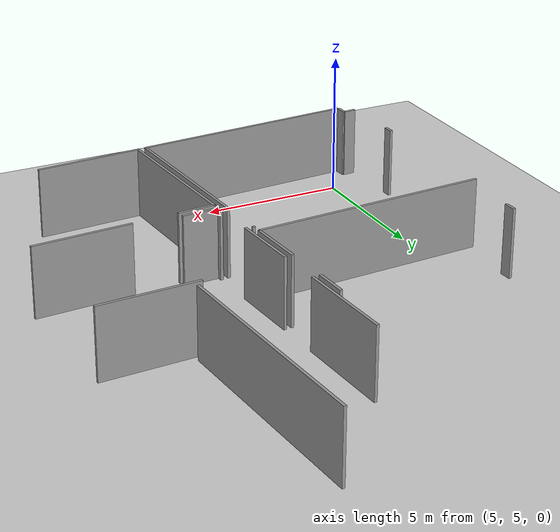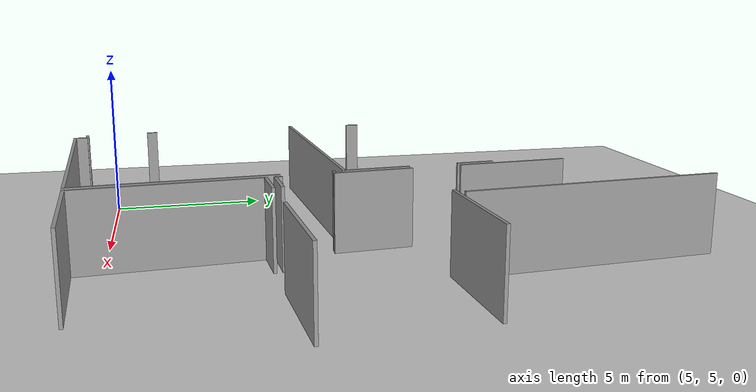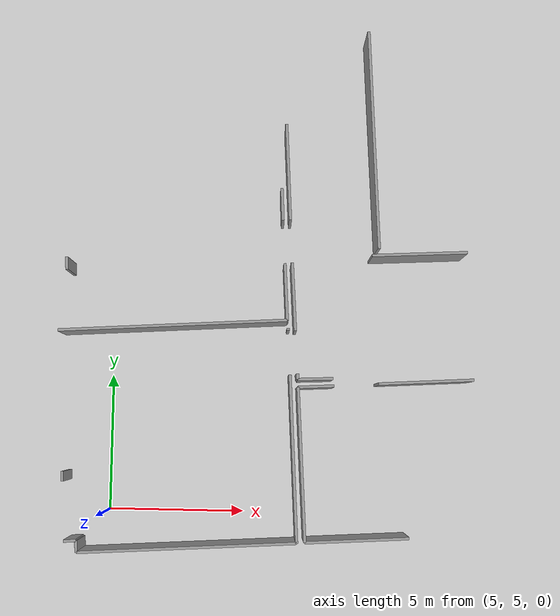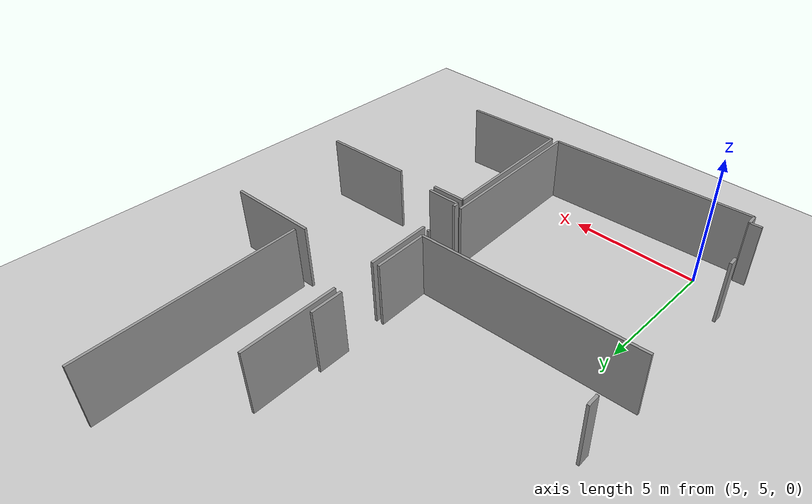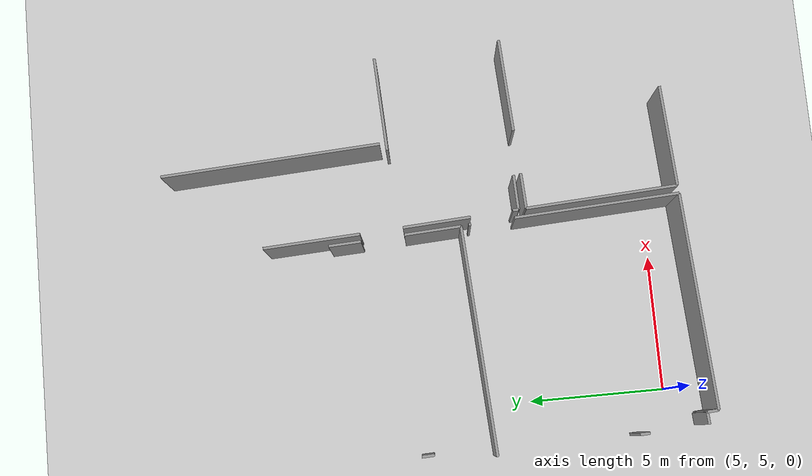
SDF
<sdf version="1.6">
 <world name="default">
  <model name="ground_plane">
   <static>1</static>
   <link name="link">
    <collision name="collision">
     <geometry><plane><normal>0 0 1</normal><size>100 100</size></plane></geometry>
     <surface><friction><ode><mu>100</mu><mu2>50</mu2></ode></friction></surface>
    </collision>
    <visual name="visual">
     <cast_shadows>0</cast_shadows>
     <geometry><plane><normal>0 0 1</normal><size>100 100</size></plane></geometry>
     <material>
      <script><uri>file://media/materials/scripts/gazebo.material</uri><name>Gazebo/Grey</name></script>
     </material>
    </visual>
   </link>
  </model>
  <model name="50025633">
   <static>1</static>
   <link name="Wall_53">
    <collision name="Wall_53_Collision">
     <geometry><box><size>1.28263585378 0.1 2.5</size></box></geometry>
     <pose>0.641317926891 0 1.25 0 0 0</pose>
    </collision>
    <visual name="Wall_53_Visual">
     <pose>0.641317926891 0 1.25 0 0 0</pose>
     <geometry><box><size>1.28263585378 0.1 2.5</size></box></geometry>
     <material>
      <script><uri>file://media/materials/scripts/gazebo.material</uri><name>Gazebo/Grey</name></script>
      <ambient>1 1 1 1</ambient>
     </material>
    </visual>
    <pose>63.5970044019 -37.6960954323 0 0 0 -3.09859349736</pose>
   </link>
   <link name="Wall_54">
    <collision name="Wall_54_Collision">
     <geometry><box><size>0.210160549495 0.1 2.5</size></box></geometry>
     <pose>0.105080274747 0 1.25 0 0 0</pose>
    </collision>
    <visual name="Wall_54_Visual">
     <pose>0.105080274747 0 1.25 0 0 0</pose>
     <geometry><box><size>0.210160549495 0.1 2.5</size></box></geometry>
     <material>
      <script><uri>file://media/materials/scripts/gazebo.material</uri><name>Gazebo/Grey</name></script>
      <ambient>1 1 1 1</ambient>
     </material>
    </visual>
    <pose>62.3155541158 -37.7512306979 0 0 0 1.62341115965</pose>
   </link>
   <link name="Wall_55">
    <collision name="Wall_55_Collision">
     <geometry><box><size>2.48927145445 0.1 2.5</size></box></geometry>
     <pose>1.24463572722 0 1.25 0 0 0</pose>
    </collision>
    <visual name="Wall_55_Visual">
     <pose>1.24463572722 0 1.25 0 0 0</pose>
     <geometry><box><size>2.48927145445 0.1 2.5</size></box></geometry>
     <material>
      <script><uri>file://media/materials/scripts/gazebo.material</uri><name>Gazebo/Grey</name></script>
      <ambient>1 1 1 1</ambient>
     </material>
    </visual>
    <pose>62.1971530385 -35.9861399597 0 0 0 1.63504245026</pose>
   </link>
   <link name="Wall_56">
    <collision name="Wall_56_Collision">
     <geometry><box><size>3.55040020973 0.1 2.5</size></box></geometry>
     <pose>1.77520010486 0 1.25 0 0 0</pose>
    </collision>
    <visual name="Wall_56_Visual">
     <pose>1.77520010486 0 1.25 0 0 0</pose>
     <geometry><box><size>3.55040020973 0.1 2.5</size></box></geometry>
     <material>
      <script><uri>file://media/materials/scripts/gazebo.material</uri><name>Gazebo/Grey</name></script>
      <ambient>1 1 1 1</ambient>
     </material>
    </visual>
    <pose>61.9400245187 -31.9300137838 0 0 0 1.62764847852</pose>
   </link>
   <link name="Wall_90">
    <collision name="Wall_90_Collision">
     <geometry><box><size>3.48423079399 0.1 2.5</size></box></geometry>
     <pose>1.742115397 0 1.25 0 0 0</pose>
    </collision>
    <visual name="Wall_90_Visual">
     <pose>1.742115397 0 1.25 0 0 0</pose>
     <geometry><box><size>3.48423079399 0.1 2.5</size></box></geometry>
     <material>
      <script><uri>file://media/materials/scripts/gazebo.material</uri><name>Gazebo/Grey</name></script>
      <ambient>1 1 1 1</ambient>
     </material>
    </visual>
    <pose>64.9558219156 -33.1777985276 0 0 0 0.050739516116</pose>
   </link>
   <link name="Wall_110">
    <collision name="Wall_110_Collision">
     <geometry><box><size>8.35656127922 0.1 2.5</size></box></geometry>
     <pose>4.17828063961 0 1.25 0 0 0</pose>
    </collision>
    <visual name="Wall_110_Visual">
     <pose>4.17828063961 0 1.25 0 0 0</pose>
     <geometry><box><size>8.35656127922 0.1 2.5</size></box></geometry>
     <material>
      <script><uri>file://media/materials/scripts/gazebo.material</uri><name>Gazebo/Grey</name></script>
      <ambient>1 1 1 1</ambient>
     </material>
    </visual>
    <pose>61.8958146744 -35.6081966068 0 0 0 -3.0794204015</pose>
   </link>
   <link name="Wall_112">
    <collision name="Wall_112_Collision">
     <geometry><box><size>0.45519616298 0.1 2.5</size></box></geometry>
     <pose>0.22759808149 0 1.25 0 0 0</pose>
    </collision>
    <visual name="Wall_112_Visual">
     <pose>0.22759808149 0 1.25 0 0 0</pose>
     <geometry><box><size>0.45519616298 0.1 2.5</size></box></geometry>
     <material>
      <script><uri>file://media/materials/scripts/gazebo.material</uri><name>Gazebo/Grey</name></script>
      <ambient>1 1 1 1</ambient>
     </material>
    </visual>
    <pose>53.8184982627 -33.9068798394 0 0 0 1.61239243155</pose>
   </link>
   <link name="Wall_115">
    <collision name="Wall_115_Collision">
     <geometry><box><size>1.19084087528 0.1 2.5</size></box></geometry>
     <pose>0.595420437639 0 1.25 0 0 0</pose>
    </collision>
    <visual name="Wall_115_Visual">
     <pose>0.595420437639 0 1.25 0 0 0</pose>
     <geometry><box><size>1.19084087528 0.1 2.5</size></box></geometry>
     <material>
      <script><uri>file://media/materials/scripts/gazebo.material</uri><name>Gazebo/Grey</name></script>
      <ambient>1 1 1 1</ambient>
     </material>
    </visual>
    <pose>61.6087047659 -30.7595962676 0 0 0 -1.51860575625</pose>
   </link>
   <link name="Wall_116">
    <collision name="Wall_116_Collision">
     <geometry><box><size>2.07754639512 0.1 2.5</size></box></geometry>
     <pose>1.03877319756 0 1.25 0 0 0</pose>
    </collision>
    <visual name="Wall_116_Visual">
     <pose>1.03877319756 0 1.25 0 0 0</pose>
     <geometry><box><size>2.07754639512 0.1 2.5</size></box></geometry>
     <material>
      <script><uri>file://media/materials/scripts/gazebo.material</uri><name>Gazebo/Grey</name></script>
      <ambient>1 1 1 1</ambient>
     </material>
    </visual>
    <pose>61.7710616079 -33.5343991971 0 0 0 -1.51071191137</pose>
   </link>
   <link name="Wall_117">
    <collision name="Wall_117_Collision">
     <geometry><box><size>7.92990178103 0.1 2.5</size></box></geometry>
     <pose>3.96495089051 0 1.25 0 0 0</pose>
    </collision>
    <visual name="Wall_117_Visual">
     <pose>3.96495089051 0 1.25 0 0 0</pose>
     <geometry><box><size>7.92990178103 0.1 2.5</size></box></geometry>
     <material>
      <script><uri>file://media/materials/scripts/gazebo.material</uri><name>Gazebo/Grey</name></script>
      <ambient>1 1 1 1</ambient>
     </material>
    </visual>
    <pose>62.3818688822 -43.6397786967 0 0 0 -3.08098261708</pose>
   </link>
   <link name="Wall_118">
    <collision name="Wall_118_Collision">
     <geometry><box><size>0.42364401826 0.1 2.5</size></box></geometry>
     <pose>0.21182200913 0 1.25 0 0 0</pose>
    </collision>
    <visual name="Wall_118_Visual">
     <pose>0.21182200913 0 1.25 0 0 0</pose>
     <geometry><box><size>0.42364401826 0.1 2.5</size></box></geometry>
     <material>
      <script><uri>file://media/materials/scripts/gazebo.material</uri><name>Gazebo/Grey</name></script>
      <ambient>1 1 1 1</ambient>
     </material>
    </visual>
    <pose>54.4665281933 -44.1201161144 0 0 0 1.63892038176</pose>
   </link>
   <link name="Wall_119">
    <collision name="Wall_119_Collision">
     <geometry><box><size>0.442784455037 0.1 2.5</size></box></geometry>
     <pose>0.221392227519 0 1.25 0 0 0</pose>
    </collision>
    <visual name="Wall_119_Visual">
     <pose>0.221392227519 0 1.25 0 0 0</pose>
     <geometry><box><size>0.442784455037 0.1 2.5</size></box></geometry>
     <material>
      <script><uri>file://media/materials/scripts/gazebo.material</uri><name>Gazebo/Grey</name></script>
      <ambient>1 1 1 1</ambient>
     </material>
    </visual>
    <pose>54.4376901627 -43.697454758 0 0 0 -3.07641769845</pose>
   </link>
   <link name="Wall_120">
    <collision name="Wall_120_Collision">
     <geometry><box><size>0.360790298373 0.1 2.5</size></box></geometry>
     <pose>0.180395149187 0 1.25 0 0 0</pose>
    </collision>
    <visual name="Wall_120_Visual">
     <pose>0.180395149187 0 1.25 0 0 0</pose>
     <geometry><box><size>0.360790298373 0.1 2.5</size></box></geometry>
     <material>
      <script><uri>file://media/materials/scripts/gazebo.material</uri><name>Gazebo/Grey</name></script>
      <ambient>1 1 1 1</ambient>
     </material>
    </visual>
    <pose>53.8804936766 -41.5936759596 0 0 0 1.6081292196</pose>
   </link>
   <link name="Wall_123">
    <collision name="Wall_123_Collision">
     <geometry><box><size>0.08262958875 0.1 2.5</size></box></geometry>
     <pose>0.041314794375 0 1.25 0 0 0</pose>
    </collision>
    <visual name="Wall_123_Visual">
     <pose>0.041314794375 0 1.25 0 0 0</pose>
     <geometry><box><size>0.08262958875 0.1 2.5</size></box></geometry>
     <material>
      <script><uri>file://media/materials/scripts/gazebo.material</uri><name>Gazebo/Grey</name></script>
      <ambient>1 1 1 1</ambient>
     </material>
    </visual>
    <pose>61.9325291715 -35.8920034809 0 0 0 -1.50463724461</pose>
   </link>
   <link name="Wall_124">
    <collision name="Wall_124_Collision">
     <geometry><box><size>6.06765760238 0.1 2.5</size></box></geometry>
     <pose>3.03382880119 0 1.25 0 0 0</pose>
    </collision>
    <visual name="Wall_124_Visual">
     <pose>3.03382880119 0 1.25 0 0 0</pose>
     <geometry><box><size>6.06765760238 0.1 2.5</size></box></geometry>
     <material>
      <script><uri>file://media/materials/scripts/gazebo.material</uri><name>Gazebo/Grey</name></script>
      <ambient>1 1 1 1</ambient>
     </material>
    </visual>
    <pose>62.0311120427 -37.5822677872 0 0 0 -1.51295646303</pose>
   </link>
   <link name="Wall_125">
    <collision name="Wall_125_Collision">
     <geometry><box><size>3.75468218454 0.1 2.5</size></box></geometry>
     <pose>1.87734109227 0 1.25 0 0 0</pose>
    </collision>
    <visual name="Wall_125_Visual">
     <pose>1.87734109227 0 1.25 0 0 0</pose>
     <geometry><box><size>3.75468218454 0.1 2.5</size></box></geometry>
     <material>
      <script><uri>file://media/materials/scripts/gazebo.material</uri><name>Gazebo/Grey</name></script>
      <ambient>1 1 1 1</ambient>
     </material>
    </visual>
    <pose>66.4245288412 -43.3877317682 0 0 0 -3.0816010028</pose>
   </link>
   <link name="Wall_126">
    <collision name="Wall_126_Collision">
     <geometry><box><size>5.58901838207 0.1 2.5</size></box></geometry>
     <pose>2.79450919104 0 1.25 0 0 0</pose>
    </collision>
    <visual name="Wall_126_Visual">
     <pose>2.79450919104 0 1.25 0 0 0</pose>
     <geometry><box><size>5.58901838207 0.1 2.5</size></box></geometry>
     <material>
      <script><uri>file://media/materials/scripts/gazebo.material</uri><name>Gazebo/Grey</name></script>
      <ambient>1 1 1 1</ambient>
     </material>
    </visual>
    <pose>62.6766011777 -43.6128462628 0 0 0 1.63232045817</pose>
   </link>
   <link name="Wall_127">
    <collision name="Wall_127_Collision">
     <geometry><box><size>1.30958899258 0.1 2.5</size></box></geometry>
     <pose>0.654794496288 0 1.25 0 0 0</pose>
    </collision>
    <visual name="Wall_127_Visual">
     <pose>0.654794496288 0 1.25 0 0 0</pose>
     <geometry><box><size>1.30958899258 0.1 2.5</size></box></geometry>
     <material>
      <script><uri>file://media/materials/scripts/gazebo.material</uri><name>Gazebo/Grey</name></script>
      <ambient>1 1 1 1</ambient>
     </material>
    </visual>
    <pose>62.332958566 -38.0344023731 0 0 0 0.0548366421167</pose>
   </link>
   <link name="Wall_128">
    <collision name="Wall_128_Collision">
     <geometry><box><size>3.46462064289 0.1 2.5</size></box></geometry>
     <pose>1.73231032144 0 1.25 0 0 0</pose>
    </collision>
    <visual name="Wall_128_Visual">
     <pose>1.73231032144 0 1.25 0 0 0</pose>
     <geometry><box><size>3.46462064289 0.1 2.5</size></box></geometry>
     <material>
      <script><uri>file://media/materials/scripts/gazebo.material</uri><name>Gazebo/Grey</name></script>
      <ambient>1 1 1 1</ambient>
     </material>
    </visual>
    <pose>65.254111325 -37.8569277969 0 0 0 0.0599142463961</pose>
   </link>
   <link name="Wall_152">
    <collision name="Wall_152_Collision">
     <geometry><box><size>8.07922239291 0.1 2.5</size></box></geometry>
     <pose>4.03961119646 0 1.25 0 0 0</pose>
    </collision>
    <visual name="Wall_152_Visual">
     <pose>4.03961119646 0 1.25 0 0 0</pose>
     <geometry><box><size>8.07922239291 0.1 2.5</size></box></geometry>
     <material>
      <script><uri>file://media/materials/scripts/gazebo.material</uri><name>Gazebo/Grey</name></script>
      <ambient>1 1 1 1</ambient>
     </material>
    </visual>
    <pose>65.2064714065 -32.922321525 0 0 0 1.63223820774</pose>
   </link>
   <pose>-50.4 47.6653699081 0 0 0 0</pose>
  </model>
 </world>
</sdf>
